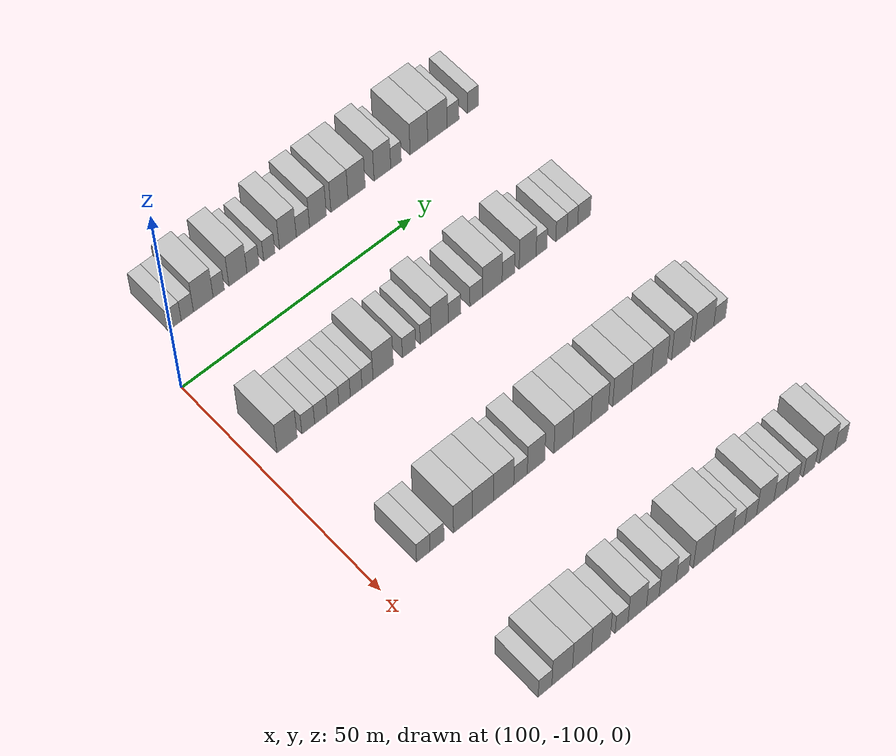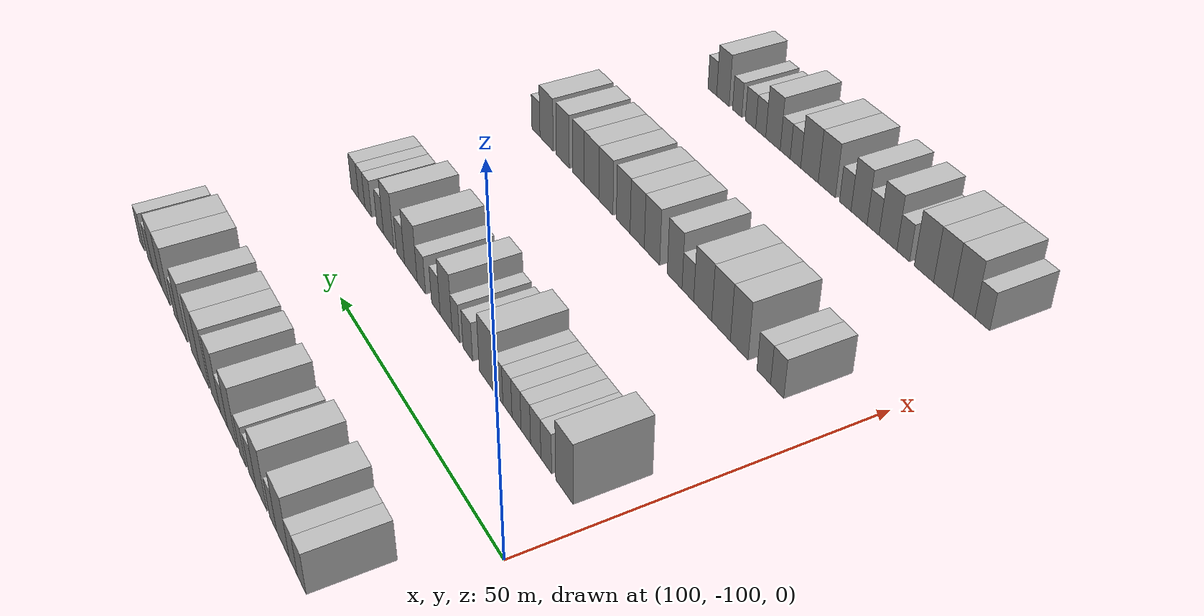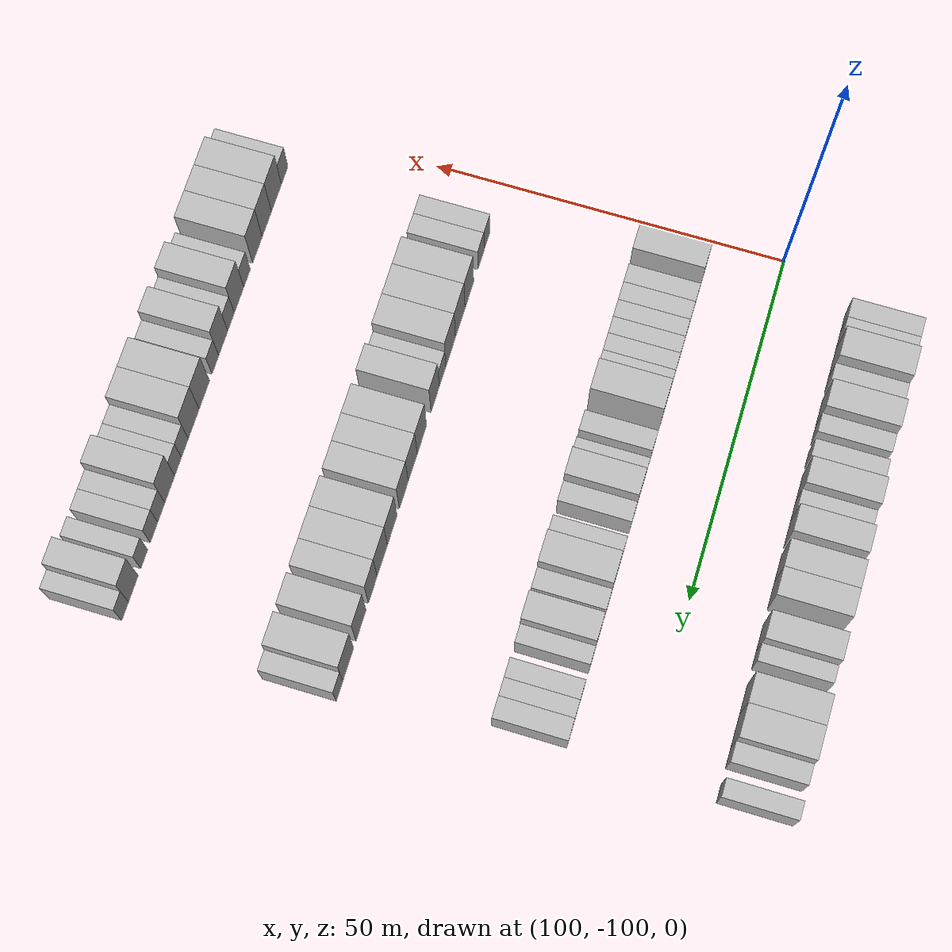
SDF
<sdf version="1.6">
 <world name="default">
  <model name="building_545">
   <static>1</static>
   <pose>85.0000 -93.4274 0 0.000000 0.000000 0.000000</pose>
   <link name="link">
    <pose>0 0 3.00 0 0 0</pose>
    <collision name="collision"><geometry><box><size>10.0000 2.8045 6.0000</size></box></geometry></collision>
    <visual name="visual">
     <cast_shadows>0</cast_shadows>
     <geometry><box><size>10.0000 2.8045 6.0000</size></box></geometry>
     <material>
      <script>
       <uri>model://HANNAS_wall/materials/scripts</uri>
       <uri>model://HANNAS_wall/materials/textures</uri>
       <name>vrc/HANNAS_wall</name>
      </script>
     </material>
    </visual>
   </link>
  </model>
  <model name="building_546">
   <static>1</static>
   <pose>85.0000 -90.7213 0 0.000000 0.000000 0.000000</pose>
   <link name="link">
    <pose>0 0 3.00 0 0 0</pose>
    <collision name="collision"><geometry><box><size>10.0000 2.6078 6.0000</size></box></geometry></collision>
    <visual name="visual">
     <cast_shadows>0</cast_shadows>
     <geometry><box><size>10.0000 2.6078 6.0000</size></box></geometry>
     <material>
      <script>
       <uri>model://HANNAS_wall/materials/scripts</uri>
       <uri>model://HANNAS_wall/materials/textures</uri>
       <name>vrc/HANNAS_wall</name>
      </script>
     </material>
    </visual>
   </link>
  </model>
  <model name="building_547">
   <static>1</static>
   <pose>85.0000 -87.3017 0 0.000000 0.000000 0.000000</pose>
   <link name="link">
    <pose>0 0 4.50 0 0 0</pose>
    <collision name="collision"><geometry><box><size>10.0000 4.2316 9.0000</size></box></geometry></collision>
    <visual name="visual">
     <cast_shadows>0</cast_shadows>
     <geometry><box><size>10.0000 4.2316 9.0000</size></box></geometry>
     <material>
      <script>
       <uri>model://HANNAS_wall/materials/scripts</uri>
       <uri>model://HANNAS_wall/materials/textures</uri>
       <name>vrc/HANNAS_wall</name>
      </script>
     </material>
    </visual>
   </link>
  </model>
  <model name="building_548">
   <static>1</static>
   <pose>85.0000 -83.9809 0 0.000000 0.000000 0.000000</pose>
   <link name="link">
    <pose>0 0 3.00 0 0 0</pose>
    <collision name="collision"><geometry><box><size>10.0000 2.4099 6.0000</size></box></geometry></collision>
    <visual name="visual">
     <cast_shadows>0</cast_shadows>
     <geometry><box><size>10.0000 2.4099 6.0000</size></box></geometry>
     <material>
      <script>
       <uri>model://HANNAS_wall/materials/scripts</uri>
       <uri>model://HANNAS_wall/materials/textures</uri>
       <name>vrc/HANNAS_wall</name>
      </script>
     </material>
    </visual>
   </link>
  </model>
  <model name="building_549">
   <static>1</static>
   <pose>85.0000 -79.8259 0 0.000000 0.000000 0.000000</pose>
   <link name="link">
    <pose>0 0 4.50 0 0 0</pose>
    <collision name="collision"><geometry><box><size>10.0000 3.9003 9.0000</size></box></geometry></collision>
    <visual name="visual">
     <cast_shadows>0</cast_shadows>
     <geometry><box><size>10.0000 3.9003 9.0000</size></box></geometry>
     <material>
      <script>
       <uri>model://HANNAS_wall/materials/scripts</uri>
       <uri>model://HANNAS_wall/materials/textures</uri>
       <name>vrc/HANNAS_wall</name>
      </script>
     </material>
    </visual>
   </link>
  </model>
  <model name="building_550">
   <static>1</static>
   <pose>85.0000 -76.5499 0 0.000000 0.000000 0.000000</pose>
   <link name="link">
    <pose>0 0 3.00 0 0 0</pose>
    <collision name="collision"><geometry><box><size>10.0000 2.6516 6.0000</size></box></geometry></collision>
    <visual name="visual">
     <cast_shadows>0</cast_shadows>
     <geometry><box><size>10.0000 2.6516 6.0000</size></box></geometry>
     <material>
      <script>
       <uri>model://HANNAS_wall/materials/scripts</uri>
       <uri>model://HANNAS_wall/materials/textures</uri>
       <name>vrc/HANNAS_wall</name>
      </script>
     </material>
    </visual>
   </link>
  </model>
  <model name="building_551">
   <static>1</static>
   <pose>85.0000 -72.9859 0 0.000000 0.000000 0.000000</pose>
   <link name="link">
    <pose>0 0 3.00 0 0 0</pose>
    <collision name="collision"><geometry><box><size>10.0000 2.4764 6.0000</size></box></geometry></collision>
    <visual name="visual">
     <cast_shadows>0</cast_shadows>
     <geometry><box><size>10.0000 2.4764 6.0000</size></box></geometry>
     <material>
      <script>
       <uri>model://HANNAS_wall/materials/scripts</uri>
       <uri>model://HANNAS_wall/materials/textures</uri>
       <name>vrc/HANNAS_wall</name>
      </script>
     </material>
    </visual>
   </link>
  </model>
  <model name="building_552">
   <static>1</static>
   <pose>85.0000 -68.8958 0 0.000000 0.000000 0.000000</pose>
   <link name="link">
    <pose>0 0 4.50 0 0 0</pose>
    <collision name="collision"><geometry><box><size>10.0000 3.7038 9.0000</size></box></geometry></collision>
    <visual name="visual">
     <cast_shadows>0</cast_shadows>
     <geometry><box><size>10.0000 3.7038 9.0000</size></box></geometry>
     <material>
      <script>
       <uri>model://HANNAS_wall/materials/scripts</uri>
       <uri>model://HANNAS_wall/materials/textures</uri>
       <name>vrc/HANNAS_wall</name>
      </script>
     </material>
    </visual>
   </link>
  </model>
  <model name="building_553">
   <static>1</static>
   <pose>85.0000 -65.5729 0 0.000000 0.000000 0.000000</pose>
   <link name="link">
    <pose>0 0 3.00 0 0 0</pose>
    <collision name="collision"><geometry><box><size>10.0000 2.9420 6.0000</size></box></geometry></collision>
    <visual name="visual">
     <cast_shadows>0</cast_shadows>
     <geometry><box><size>10.0000 2.9420 6.0000</size></box></geometry>
     <material>
      <script>
       <uri>model://HANNAS_wall/materials/scripts</uri>
       <uri>model://HANNAS_wall/materials/textures</uri>
       <name>vrc/HANNAS_wall</name>
      </script>
     </material>
    </visual>
   </link>
  </model>
  <model name="building_554">
   <static>1</static>
   <pose>85.0000 -62.2259 0 0.000000 0.000000 0.000000</pose>
   <link name="link">
    <pose>0 0 4.50 0 0 0</pose>
    <collision name="collision"><geometry><box><size>10.0000 3.7520 9.0000</size></box></geometry></collision>
    <visual name="visual">
     <cast_shadows>0</cast_shadows>
     <geometry><box><size>10.0000 3.7520 9.0000</size></box></geometry>
     <material>
      <script>
       <uri>model://HANNAS_wall/materials/scripts</uri>
       <uri>model://HANNAS_wall/materials/textures</uri>
       <name>vrc/HANNAS_wall</name>
      </script>
     </material>
    </visual>
   </link>
  </model>
  <model name="building_555">
   <static>1</static>
   <pose>85.0000 -57.4325 0 0.000000 0.000000 0.000000</pose>
   <link name="link">
    <pose>0 0 4.50 0 0 0</pose>
    <collision name="collision"><geometry><box><size>10.0000 3.8347 9.0000</size></box></geometry></collision>
    <visual name="visual">
     <cast_shadows>0</cast_shadows>
     <geometry><box><size>10.0000 3.8347 9.0000</size></box></geometry>
     <material>
      <script>
       <uri>model://HANNAS_wall/materials/scripts</uri>
       <uri>model://HANNAS_wall/materials/textures</uri>
       <name>vrc/HANNAS_wall</name>
      </script>
     </material>
    </visual>
   </link>
  </model>
  <model name="building_556">
   <static>1</static>
   <pose>85.0000 -53.5771 0 0.000000 0.000000 0.000000</pose>
   <link name="link">
    <pose>0 0 4.50 0 0 0</pose>
    <collision name="collision"><geometry><box><size>10.0000 3.8761 9.0000</size></box></geometry></collision>
    <visual name="visual">
     <cast_shadows>0</cast_shadows>
     <geometry><box><size>10.0000 3.8761 9.0000</size></box></geometry>
     <material>
      <script>
       <uri>model://HANNAS_wall/materials/scripts</uri>
       <uri>model://HANNAS_wall/materials/textures</uri>
       <name>vrc/HANNAS_wall</name>
      </script>
     </material>
    </visual>
   </link>
  </model>
  <model name="building_557">
   <static>1</static>
   <pose>85.0000 -47.7455 0 0.000000 0.000000 0.000000</pose>
   <link name="link">
    <pose>0 0 4.50 0 0 0</pose>
    <collision name="collision"><geometry><box><size>10.0000 3.7870 9.0000</size></box></geometry></collision>
    <visual name="visual">
     <cast_shadows>0</cast_shadows>
     <geometry><box><size>10.0000 3.7870 9.0000</size></box></geometry>
     <material>
      <script>
       <uri>model://HANNAS_wall/materials/scripts</uri>
       <uri>model://HANNAS_wall/materials/textures</uri>
       <name>vrc/HANNAS_wall</name>
      </script>
     </material>
    </visual>
   </link>
  </model>
  <model name="building_558">
   <static>1</static>
   <pose>85.0000 -44.6456 0 0.000000 0.000000 0.000000</pose>
   <link name="link">
    <pose>0 0 3.00 0 0 0</pose>
    <collision name="collision"><geometry><box><size>10.0000 2.4130 6.0000</size></box></geometry></collision>
    <visual name="visual">
     <cast_shadows>0</cast_shadows>
     <geometry><box><size>10.0000 2.4130 6.0000</size></box></geometry>
     <material>
      <script>
       <uri>model://HANNAS_wall/materials/scripts</uri>
       <uri>model://HANNAS_wall/materials/textures</uri>
       <name>vrc/HANNAS_wall</name>
      </script>
     </material>
    </visual>
   </link>
  </model>
  <model name="building_559">
   <static>1</static>
   <pose>85.0000 -39.4135 0 0.000000 0.000000 0.000000</pose>
   <link name="link">
    <pose>0 0 4.50 0 0 0</pose>
    <collision name="collision"><geometry><box><size>10.0000 4.0512 9.0000</size></box></geometry></collision>
    <visual name="visual">
     <cast_shadows>0</cast_shadows>
     <geometry><box><size>10.0000 4.0512 9.0000</size></box></geometry>
     <material>
      <script>
       <uri>model://HANNAS_wall/materials/scripts</uri>
       <uri>model://HANNAS_wall/materials/textures</uri>
       <name>vrc/HANNAS_wall</name>
      </script>
     </material>
    </visual>
   </link>
  </model>
  <model name="building_560">
   <static>1</static>
   <pose>85.0000 -35.1451 0 0.000000 0.000000 0.000000</pose>
   <link name="link">
    <pose>0 0 4.50 0 0 0</pose>
    <collision name="collision"><geometry><box><size>10.0000 4.4854 9.0000</size></box></geometry></collision>
    <visual name="visual">
     <cast_shadows>0</cast_shadows>
     <geometry><box><size>10.0000 4.4854 9.0000</size></box></geometry>
     <material>
      <script>
       <uri>model://HANNAS_wall/materials/scripts</uri>
       <uri>model://HANNAS_wall/materials/textures</uri>
       <name>vrc/HANNAS_wall</name>
      </script>
     </material>
    </visual>
   </link>
  </model>
  <model name="building_561">
   <static>1</static>
   <pose>85.0000 -31.5239 0 0.000000 0.000000 0.000000</pose>
   <link name="link">
    <pose>0 0 3.00 0 0 0</pose>
    <collision name="collision"><geometry><box><size>10.0000 2.7570 6.0000</size></box></geometry></collision>
    <visual name="visual">
     <cast_shadows>0</cast_shadows>
     <geometry><box><size>10.0000 2.7570 6.0000</size></box></geometry>
     <material>
      <script>
       <uri>model://HANNAS_wall/materials/scripts</uri>
       <uri>model://HANNAS_wall/materials/textures</uri>
       <name>vrc/HANNAS_wall</name>
      </script>
     </material>
    </visual>
   </link>
  </model>
  <model name="building_562">
   <static>1</static>
   <pose>85.0000 -26.8855 0 0.000000 0.000000 0.000000</pose>
   <link name="link">
    <pose>0 0 3.00 0 0 0</pose>
    <collision name="collision"><geometry><box><size>10.0000 2.5198 6.0000</size></box></geometry></collision>
    <visual name="visual">
     <cast_shadows>0</cast_shadows>
     <geometry><box><size>10.0000 2.5198 6.0000</size></box></geometry>
     <material>
      <script>
       <uri>model://HANNAS_wall/materials/scripts</uri>
       <uri>model://HANNAS_wall/materials/textures</uri>
       <name>vrc/HANNAS_wall</name>
      </script>
     </material>
    </visual>
   </link>
  </model>
  <model name="building_763">
   <static>1</static>
   <pose>115.0000 -94.1213 0 0.000000 0.000000 0.000000</pose>
   <link name="link">
    <pose>0 0 4.50 0 0 0</pose>
    <collision name="collision"><geometry><box><size>10.0000 4.2660 9.0000</size></box></geometry></collision>
    <visual name="visual">
     <cast_shadows>0</cast_shadows>
     <geometry><box><size>10.0000 4.2660 9.0000</size></box></geometry>
     <material>
      <script>
       <uri>model://HANNAS_wall/materials/scripts</uri>
       <uri>model://HANNAS_wall/materials/textures</uri>
       <name>vrc/HANNAS_wall</name>
      </script>
     </material>
    </visual>
   </link>
  </model>
  <model name="building_764">
   <static>1</static>
   <pose>115.0000 -89.6271 0 0.000000 0.000000 0.000000</pose>
   <link name="link">
    <pose>0 0 3.00 0 0 0</pose>
    <collision name="collision"><geometry><box><size>10.0000 2.7225 6.0000</size></box></geometry></collision>
    <visual name="visual">
     <cast_shadows>0</cast_shadows>
     <geometry><box><size>10.0000 2.7225 6.0000</size></box></geometry>
     <material>
      <script>
       <uri>model://HANNAS_wall/materials/scripts</uri>
       <uri>model://HANNAS_wall/materials/textures</uri>
       <name>vrc/HANNAS_wall</name>
      </script>
     </material>
    </visual>
   </link>
  </model>
  <model name="building_765">
   <static>1</static>
   <pose>115.0000 -86.9299 0 0.000000 0.000000 0.000000</pose>
   <link name="link">
    <pose>0 0 3.00 0 0 0</pose>
    <collision name="collision"><geometry><box><size>10.0000 2.6718 6.0000</size></box></geometry></collision>
    <visual name="visual">
     <cast_shadows>0</cast_shadows>
     <geometry><box><size>10.0000 2.6718 6.0000</size></box></geometry>
     <material>
      <script>
       <uri>model://HANNAS_wall/materials/scripts</uri>
       <uri>model://HANNAS_wall/materials/textures</uri>
       <name>vrc/HANNAS_wall</name>
      </script>
     </material>
    </visual>
   </link>
  </model>
  <model name="building_766">
   <static>1</static>
   <pose>115.0000 -84.3327 0 0.000000 0.000000 0.000000</pose>
   <link name="link">
    <pose>0 0 3.00 0 0 0</pose>
    <collision name="collision"><geometry><box><size>10.0000 2.5227 6.0000</size></box></geometry></collision>
    <visual name="visual">
     <cast_shadows>0</cast_shadows>
     <geometry><box><size>10.0000 2.5227 6.0000</size></box></geometry>
     <material>
      <script>
       <uri>model://HANNAS_wall/materials/scripts</uri>
       <uri>model://HANNAS_wall/materials/textures</uri>
       <name>vrc/HANNAS_wall</name>
      </script>
     </material>
    </visual>
   </link>
  </model>
  <model name="building_767">
   <static>1</static>
   <pose>115.0000 -81.8428 0 0.000000 0.000000 0.000000</pose>
   <link name="link">
    <pose>0 0 3.00 0 0 0</pose>
    <collision name="collision"><geometry><box><size>10.0000 2.4573 6.0000</size></box></geometry></collision>
    <visual name="visual">
     <cast_shadows>0</cast_shadows>
     <geometry><box><size>10.0000 2.4573 6.0000</size></box></geometry>
     <material>
      <script>
       <uri>model://HANNAS_wall/materials/scripts</uri>
       <uri>model://HANNAS_wall/materials/textures</uri>
       <name>vrc/HANNAS_wall</name>
      </script>
     </material>
    </visual>
   </link>
  </model>
  <model name="building_768">
   <static>1</static>
   <pose>115.0000 -79.3623 0 0.000000 0.000000 0.000000</pose>
   <link name="link">
    <pose>0 0 3.00 0 0 0</pose>
    <collision name="collision"><geometry><box><size>10.0000 2.5037 6.0000</size></box></geometry></collision>
    <visual name="visual">
     <cast_shadows>0</cast_shadows>
     <geometry><box><size>10.0000 2.5037 6.0000</size></box></geometry>
     <material>
      <script>
       <uri>model://HANNAS_wall/materials/scripts</uri>
       <uri>model://HANNAS_wall/materials/textures</uri>
       <name>vrc/HANNAS_wall</name>
      </script>
     </material>
    </visual>
   </link>
  </model>
  <model name="building_769">
   <static>1</static>
   <pose>115.0000 -76.9100 0 0.000000 0.000000 0.000000</pose>
   <link name="link">
    <pose>0 0 3.00 0 0 0</pose>
    <collision name="collision"><geometry><box><size>10.0000 2.4008 6.0000</size></box></geometry></collision>
    <visual name="visual">
     <cast_shadows>0</cast_shadows>
     <geometry><box><size>10.0000 2.4008 6.0000</size></box></geometry>
     <material>
      <script>
       <uri>model://HANNAS_wall/materials/scripts</uri>
       <uri>model://HANNAS_wall/materials/textures</uri>
       <name>vrc/HANNAS_wall</name>
      </script>
     </material>
    </visual>
   </link>
  </model>
  <model name="building_770">
   <static>1</static>
   <pose>115.0000 -73.5172 0 0.000000 0.000000 0.000000</pose>
   <link name="link">
    <pose>0 0 4.50 0 0 0</pose>
    <collision name="collision"><geometry><box><size>10.0000 4.3848 9.0000</size></box></geometry></collision>
    <visual name="visual">
     <cast_shadows>0</cast_shadows>
     <geometry><box><size>10.0000 4.3848 9.0000</size></box></geometry>
     <material>
      <script>
       <uri>model://HANNAS_wall/materials/scripts</uri>
       <uri>model://HANNAS_wall/materials/textures</uri>
       <name>vrc/HANNAS_wall</name>
      </script>
     </material>
    </visual>
   </link>
  </model>
  <model name="building_771">
   <static>1</static>
   <pose>115.0000 -67.8731 0 0.000000 0.000000 0.000000</pose>
   <link name="link">
    <pose>0 0 3.00 0 0 0</pose>
    <collision name="collision"><geometry><box><size>10.0000 2.9035 6.0000</size></box></geometry></collision>
    <visual name="visual">
     <cast_shadows>0</cast_shadows>
     <geometry><box><size>10.0000 2.9035 6.0000</size></box></geometry>
     <material>
      <script>
       <uri>model://HANNAS_wall/materials/scripts</uri>
       <uri>model://HANNAS_wall/materials/textures</uri>
       <name>vrc/HANNAS_wall</name>
      </script>
     </material>
    </visual>
   </link>
  </model>
  <model name="building_772">
   <static>1</static>
   <pose>115.0000 -64.2178 0 0.000000 0.000000 0.000000</pose>
   <link name="link">
    <pose>0 0 3.00 0 0 0</pose>
    <collision name="collision"><geometry><box><size>10.0000 2.4072 6.0000</size></box></geometry></collision>
    <visual name="visual">
     <cast_shadows>0</cast_shadows>
     <geometry><box><size>10.0000 2.4072 6.0000</size></box></geometry>
     <material>
      <script>
       <uri>model://HANNAS_wall/materials/scripts</uri>
       <uri>model://HANNAS_wall/materials/textures</uri>
       <name>vrc/HANNAS_wall</name>
      </script>
     </material>
    </visual>
   </link>
  </model>
  <model name="building_773">
   <static>1</static>
   <pose>115.0000 -61.1125 0 0.000000 0.000000 0.000000</pose>
   <link name="link">
    <pose>0 0 4.50 0 0 0</pose>
    <collision name="collision"><geometry><box><size>10.0000 3.8033 9.0000</size></box></geometry></collision>
    <visual name="visual">
     <cast_shadows>0</cast_shadows>
     <geometry><box><size>10.0000 3.8033 9.0000</size></box></geometry>
     <material>
      <script>
       <uri>model://HANNAS_wall/materials/scripts</uri>
       <uri>model://HANNAS_wall/materials/textures</uri>
       <name>vrc/HANNAS_wall</name>
      </script>
     </material>
    </visual>
   </link>
  </model>
  <model name="building_774">
   <static>1</static>
   <pose>115.0000 -57.7980 0 0.000000 0.000000 0.000000</pose>
   <link name="link">
    <pose>0 0 3.00 0 0 0</pose>
    <collision name="collision"><geometry><box><size>10.0000 2.8256 6.0000</size></box></geometry></collision>
    <visual name="visual">
     <cast_shadows>0</cast_shadows>
     <geometry><box><size>10.0000 2.8256 6.0000</size></box></geometry>
     <material>
      <script>
       <uri>model://HANNAS_wall/materials/scripts</uri>
       <uri>model://HANNAS_wall/materials/textures</uri>
       <name>vrc/HANNAS_wall</name>
      </script>
     </material>
    </visual>
   </link>
  </model>
  <model name="building_775">
   <static>1</static>
   <pose>115.0000 -52.9632 0 0.000000 0.000000 0.000000</pose>
   <link name="link">
    <pose>0 0 3.00 0 0 0</pose>
    <collision name="collision"><geometry><box><size>10.0000 2.8440 6.0000</size></box></geometry></collision>
    <visual name="visual">
     <cast_shadows>0</cast_shadows>
     <geometry><box><size>10.0000 2.8440 6.0000</size></box></geometry>
     <material>
      <script>
       <uri>model://HANNAS_wall/materials/scripts</uri>
       <uri>model://HANNAS_wall/materials/textures</uri>
       <name>vrc/HANNAS_wall</name>
      </script>
     </material>
    </visual>
   </link>
  </model>
  <model name="building_776">
   <static>1</static>
   <pose>115.0000 -49.3430 0 0.000000 0.000000 0.000000</pose>
   <link name="link">
    <pose>0 0 4.50 0 0 0</pose>
    <collision name="collision"><geometry><box><size>10.0000 4.3964 9.0000</size></box></geometry></collision>
    <visual name="visual">
     <cast_shadows>0</cast_shadows>
     <geometry><box><size>10.0000 4.3964 9.0000</size></box></geometry>
     <material>
      <script>
       <uri>model://HANNAS_wall/materials/scripts</uri>
       <uri>model://HANNAS_wall/materials/textures</uri>
       <name>vrc/HANNAS_wall</name>
      </script>
     </material>
    </visual>
   </link>
  </model>
  <model name="building_777">
   <static>1</static>
   <pose>115.0000 -45.7103 0 0.000000 0.000000 0.000000</pose>
   <link name="link">
    <pose>0 0 3.00 0 0 0</pose>
    <collision name="collision"><geometry><box><size>10.0000 2.8691 6.0000</size></box></geometry></collision>
    <visual name="visual">
     <cast_shadows>0</cast_shadows>
     <geometry><box><size>10.0000 2.8691 6.0000</size></box></geometry>
     <material>
      <script>
       <uri>model://HANNAS_wall/materials/scripts</uri>
       <uri>model://HANNAS_wall/materials/textures</uri>
       <name>vrc/HANNAS_wall</name>
      </script>
     </material>
    </visual>
   </link>
  </model>
  <model name="building_778">
   <static>1</static>
   <pose>115.0000 -41.3480 0 0.000000 0.000000 0.000000</pose>
   <link name="link">
    <pose>0 0 4.50 0 0 0</pose>
    <collision name="collision"><geometry><box><size>10.0000 3.8555 9.0000</size></box></geometry></collision>
    <visual name="visual">
     <cast_shadows>0</cast_shadows>
     <geometry><box><size>10.0000 3.8555 9.0000</size></box></geometry>
     <material>
      <script>
       <uri>model://HANNAS_wall/materials/scripts</uri>
       <uri>model://HANNAS_wall/materials/textures</uri>
       <name>vrc/HANNAS_wall</name>
      </script>
     </material>
    </visual>
   </link>
  </model>
  <model name="building_779">
   <static>1</static>
   <pose>115.0000 -38.1606 0 0.000000 0.000000 0.000000</pose>
   <link name="link">
    <pose>0 0 3.00 0 0 0</pose>
    <collision name="collision"><geometry><box><size>10.0000 2.5193 6.0000</size></box></geometry></collision>
    <visual name="visual">
     <cast_shadows>0</cast_shadows>
     <geometry><box><size>10.0000 2.5193 6.0000</size></box></geometry>
     <material>
      <script>
       <uri>model://HANNAS_wall/materials/scripts</uri>
       <uri>model://HANNAS_wall/materials/textures</uri>
       <name>vrc/HANNAS_wall</name>
      </script>
     </material>
    </visual>
   </link>
  </model>
  <model name="building_780">
   <static>1</static>
   <pose>115.0000 -33.5853 0 0.000000 0.000000 0.000000</pose>
   <link name="link">
    <pose>0 0 3.00 0 0 0</pose>
    <collision name="collision"><geometry><box><size>10.0000 2.6312 6.0000</size></box></geometry></collision>
    <visual name="visual">
     <cast_shadows>0</cast_shadows>
     <geometry><box><size>10.0000 2.6312 6.0000</size></box></geometry>
     <material>
      <script>
       <uri>model://HANNAS_wall/materials/scripts</uri>
       <uri>model://HANNAS_wall/materials/textures</uri>
       <name>vrc/HANNAS_wall</name>
      </script>
     </material>
    </visual>
   </link>
  </model>
  <model name="building_781">
   <static>1</static>
   <pose>115.0000 -31.0492 0 0.000000 0.000000 0.000000</pose>
   <link name="link">
    <pose>0 0 3.00 0 0 0</pose>
    <collision name="collision"><geometry><box><size>10.0000 2.4410 6.0000</size></box></geometry></collision>
    <visual name="visual">
     <cast_shadows>0</cast_shadows>
     <geometry><box><size>10.0000 2.4410 6.0000</size></box></geometry>
     <material>
      <script>
       <uri>model://HANNAS_wall/materials/scripts</uri>
       <uri>model://HANNAS_wall/materials/textures</uri>
       <name>vrc/HANNAS_wall</name>
      </script>
     </material>
    </visual>
   </link>
  </model>
  <model name="building_782">
   <static>1</static>
   <pose>115.0000 -28.3420 0 0.000000 0.000000 0.000000</pose>
   <link name="link">
    <pose>0 0 3.00 0 0 0</pose>
    <collision name="collision"><geometry><box><size>10.0000 2.9734 6.0000</size></box></geometry></collision>
    <visual name="visual">
     <cast_shadows>0</cast_shadows>
     <geometry><box><size>10.0000 2.9734 6.0000</size></box></geometry>
     <material>
      <script>
       <uri>model://HANNAS_wall/materials/scripts</uri>
       <uri>model://HANNAS_wall/materials/textures</uri>
       <name>vrc/HANNAS_wall</name>
      </script>
     </material>
    </visual>
   </link>
  </model>
  <model name="building_1007">
   <static>1</static>
   <pose>145.0000 -91.0903 0 0.000000 0.000000 0.000000</pose>
   <link name="link">
    <pose>0 0 3.00 0 0 0</pose>
    <collision name="collision"><geometry><box><size>10.0000 2.8509 6.0000</size></box></geometry></collision>
    <visual name="visual">
     <cast_shadows>0</cast_shadows>
     <geometry><box><size>10.0000 2.8509 6.0000</size></box></geometry>
     <material>
      <script>
       <uri>model://HANNAS_wall/materials/scripts</uri>
       <uri>model://HANNAS_wall/materials/textures</uri>
       <name>vrc/HANNAS_wall</name>
      </script>
     </material>
    </visual>
   </link>
  </model>
  <model name="building_1008">
   <static>1</static>
   <pose>145.0000 -88.1753 0 0.000000 0.000000 0.000000</pose>
   <link name="link">
    <pose>0 0 3.00 0 0 0</pose>
    <collision name="collision"><geometry><box><size>10.0000 2.9791 6.0000</size></box></geometry></collision>
    <visual name="visual">
     <cast_shadows>0</cast_shadows>
     <geometry><box><size>10.0000 2.9791 6.0000</size></box></geometry>
     <material>
      <script>
       <uri>model://HANNAS_wall/materials/scripts</uri>
       <uri>model://HANNAS_wall/materials/textures</uri>
       <name>vrc/HANNAS_wall</name>
      </script>
     </material>
    </visual>
   </link>
  </model>
  <model name="building_1009">
   <static>1</static>
   <pose>145.0000 -82.6483 0 0.000000 0.000000 0.000000</pose>
   <link name="link">
    <pose>0 0 4.50 0 0 0</pose>
    <collision name="collision"><geometry><box><size>10.0000 4.0748 9.0000</size></box></geometry></collision>
    <visual name="visual">
     <cast_shadows>0</cast_shadows>
     <geometry><box><size>10.0000 4.0748 9.0000</size></box></geometry>
     <material>
      <script>
       <uri>model://HANNAS_wall/materials/scripts</uri>
       <uri>model://HANNAS_wall/materials/textures</uri>
       <name>vrc/HANNAS_wall</name>
      </script>
     </material>
    </visual>
   </link>
  </model>
  <model name="building_1010">
   <static>1</static>
   <pose>145.0000 -78.3878 0 0.000000 0.000000 0.000000</pose>
   <link name="link">
    <pose>0 0 4.50 0 0 0</pose>
    <collision name="collision"><geometry><box><size>10.0000 4.4463 9.0000</size></box></geometry></collision>
    <visual name="visual">
     <cast_shadows>0</cast_shadows>
     <geometry><box><size>10.0000 4.4463 9.0000</size></box></geometry>
     <material>
      <script>
       <uri>model://HANNAS_wall/materials/scripts</uri>
       <uri>model://HANNAS_wall/materials/textures</uri>
       <name>vrc/HANNAS_wall</name>
      </script>
     </material>
    </visual>
   </link>
  </model>
  <model name="building_1011">
   <static>1</static>
   <pose>145.0000 -73.9531 0 0.000000 0.000000 0.000000</pose>
   <link name="link">
    <pose>0 0 4.50 0 0 0</pose>
    <collision name="collision"><geometry><box><size>10.0000 4.4231 9.0000</size></box></geometry></collision>
    <visual name="visual">
     <cast_shadows>0</cast_shadows>
     <geometry><box><size>10.0000 4.4231 9.0000</size></box></geometry>
     <material>
      <script>
       <uri>model://HANNAS_wall/materials/scripts</uri>
       <uri>model://HANNAS_wall/materials/textures</uri>
       <name>vrc/HANNAS_wall</name>
      </script>
     </material>
    </visual>
   </link>
  </model>
  <model name="building_1012">
   <static>1</static>
   <pose>145.0000 -70.2704 0 0.000000 0.000000 0.000000</pose>
   <link name="link">
    <pose>0 0 3.00 0 0 0</pose>
    <collision name="collision"><geometry><box><size>10.0000 2.9422 6.0000</size></box></geometry></collision>
    <visual name="visual">
     <cast_shadows>0</cast_shadows>
     <geometry><box><size>10.0000 2.9422 6.0000</size></box></geometry>
     <material>
      <script>
       <uri>model://HANNAS_wall/materials/scripts</uri>
       <uri>model://HANNAS_wall/materials/textures</uri>
       <name>vrc/HANNAS_wall</name>
      </script>
     </material>
    </visual>
   </link>
  </model>
  <model name="building_1013">
   <static>1</static>
   <pose>145.0000 -66.8924 0 0.000000 0.000000 0.000000</pose>
   <link name="link">
    <pose>0 0 4.50 0 0 0</pose>
    <collision name="collision"><geometry><box><size>10.0000 3.8138 9.0000</size></box></geometry></collision>
    <visual name="visual">
     <cast_shadows>0</cast_shadows>
     <geometry><box><size>10.0000 3.8138 9.0000</size></box></geometry>
     <material>
      <script>
       <uri>model://HANNAS_wall/materials/scripts</uri>
       <uri>model://HANNAS_wall/materials/textures</uri>
       <name>vrc/HANNAS_wall</name>
      </script>
     </material>
    </visual>
   </link>
  </model>
  <model name="building_1014">
   <static>1</static>
   <pose>145.0000 -60.9011 0 0.000000 0.000000 0.000000</pose>
   <link name="link">
    <pose>0 0 4.50 0 0 0</pose>
    <collision name="collision"><geometry><box><size>10.0000 4.1688 9.0000</size></box></geometry></collision>
    <visual name="visual">
     <cast_shadows>0</cast_shadows>
     <geometry><box><size>10.0000 4.1688 9.0000</size></box></geometry>
     <material>
      <script>
       <uri>model://HANNAS_wall/materials/scripts</uri>
       <uri>model://HANNAS_wall/materials/textures</uri>
       <name>vrc/HANNAS_wall</name>
      </script>
     </material>
    </visual>
   </link>
  </model>
  <model name="building_1015">
   <static>1</static>
   <pose>145.0000 -56.8330 0 0.000000 0.000000 0.000000</pose>
   <link name="link">
    <pose>0 0 4.50 0 0 0</pose>
    <collision name="collision"><geometry><box><size>10.0000 3.9673 9.0000</size></box></geometry></collision>
    <visual name="visual">
     <cast_shadows>0</cast_shadows>
     <geometry><box><size>10.0000 3.9673 9.0000</size></box></geometry>
     <material>
      <script>
       <uri>model://HANNAS_wall/materials/scripts</uri>
       <uri>model://HANNAS_wall/materials/textures</uri>
       <name>vrc/HANNAS_wall</name>
      </script>
     </material>
    </visual>
   </link>
  </model>
  <model name="building_1016">
   <static>1</static>
   <pose>145.0000 -52.8866 0 0.000000 0.000000 0.000000</pose>
   <link name="link">
    <pose>0 0 4.50 0 0 0</pose>
    <collision name="collision"><geometry><box><size>10.0000 3.9256 9.0000</size></box></geometry></collision>
    <visual name="visual">
     <cast_shadows>0</cast_shadows>
     <geometry><box><size>10.0000 3.9256 9.0000</size></box></geometry>
     <material>
      <script>
       <uri>model://HANNAS_wall/materials/scripts</uri>
       <uri>model://HANNAS_wall/materials/textures</uri>
       <name>vrc/HANNAS_wall</name>
      </script>
     </material>
    </visual>
   </link>
  </model>
  <model name="building_1017">
   <static>1</static>
   <pose>145.0000 -47.8189 0 0.000000 0.000000 0.000000</pose>
   <link name="link">
    <pose>0 0 4.50 0 0 0</pose>
    <collision name="collision"><geometry><box><size>10.0000 4.2098 9.0000</size></box></geometry></collision>
    <visual name="visual">
     <cast_shadows>0</cast_shadows>
     <geometry><box><size>10.0000 4.2098 9.0000</size></box></geometry>
     <material>
      <script>
       <uri>model://HANNAS_wall/materials/scripts</uri>
       <uri>model://HANNAS_wall/materials/textures</uri>
       <name>vrc/HANNAS_wall</name>
      </script>
     </material>
    </visual>
   </link>
  </model>
  <model name="building_1018">
   <static>1</static>
   <pose>145.0000 -43.4937 0 0.000000 0.000000 0.000000</pose>
   <link name="link">
    <pose>0 0 4.50 0 0 0</pose>
    <collision name="collision"><geometry><box><size>10.0000 4.4406 9.0000</size></box></geometry></collision>
    <visual name="visual">
     <cast_shadows>0</cast_shadows>
     <geometry><box><size>10.0000 4.4406 9.0000</size></box></geometry>
     <material>
      <script>
       <uri>model://HANNAS_wall/materials/scripts</uri>
       <uri>model://HANNAS_wall/materials/textures</uri>
       <name>vrc/HANNAS_wall</name>
      </script>
     </material>
    </visual>
   </link>
  </model>
  <model name="building_1019">
   <static>1</static>
   <pose>145.0000 -39.4247 0 0.000000 0.000000 0.000000</pose>
   <link name="link">
    <pose>0 0 4.50 0 0 0</pose>
    <collision name="collision"><geometry><box><size>10.0000 3.6973 9.0000</size></box></geometry></collision>
    <visual name="visual">
     <cast_shadows>0</cast_shadows>
     <geometry><box><size>10.0000 3.6973 9.0000</size></box></geometry>
     <material>
      <script>
       <uri>model://HANNAS_wall/materials/scripts</uri>
       <uri>model://HANNAS_wall/materials/textures</uri>
       <name>vrc/HANNAS_wall</name>
      </script>
     </material>
    </visual>
   </link>
  </model>
  <model name="building_1020">
   <static>1</static>
   <pose>145.0000 -34.4571 0 0.000000 0.000000 0.000000</pose>
   <link name="link">
    <pose>0 0 4.50 0 0 0</pose>
    <collision name="collision"><geometry><box><size>10.0000 4.2379 9.0000</size></box></geometry></collision>
    <visual name="visual">
     <cast_shadows>0</cast_shadows>
     <geometry><box><size>10.0000 4.2379 9.0000</size></box></geometry>
     <material>
      <script>
       <uri>model://HANNAS_wall/materials/scripts</uri>
       <uri>model://HANNAS_wall/materials/textures</uri>
       <name>vrc/HANNAS_wall</name>
      </script>
     </material>
    </visual>
   </link>
  </model>
  <model name="building_1021">
   <static>1</static>
   <pose>145.0000 -29.1008 0 0.000000 0.000000 0.000000</pose>
   <link name="link">
    <pose>0 0 4.50 0 0 0</pose>
    <collision name="collision"><geometry><box><size>10.0000 4.4748 9.0000</size></box></geometry></collision>
    <visual name="visual">
     <cast_shadows>0</cast_shadows>
     <geometry><box><size>10.0000 4.4748 9.0000</size></box></geometry>
     <material>
      <script>
       <uri>model://HANNAS_wall/materials/scripts</uri>
       <uri>model://HANNAS_wall/materials/textures</uri>
       <name>vrc/HANNAS_wall</name>
      </script>
     </material>
    </visual>
   </link>
  </model>
  <model name="building_1022">
   <static>1</static>
   <pose>145.0000 -25.4885 0 0.000000 0.000000 0.000000</pose>
   <link name="link">
    <pose>0 0 3.00 0 0 0</pose>
    <collision name="collision"><geometry><box><size>10.0000 2.7497 6.0000</size></box></geometry></collision>
    <visual name="visual">
     <cast_shadows>0</cast_shadows>
     <geometry><box><size>10.0000 2.7497 6.0000</size></box></geometry>
     <material>
      <script>
       <uri>model://HANNAS_wall/materials/scripts</uri>
       <uri>model://HANNAS_wall/materials/textures</uri>
       <name>vrc/HANNAS_wall</name>
      </script>
     </material>
    </visual>
   </link>
  </model>
  <model name="building_1233">
   <static>1</static>
   <pose>175.0000 -92.4642 0 0.000000 0.000000 0.000000</pose>
   <link name="link">
    <pose>0 0 3.00 0 0 0</pose>
    <collision name="collision"><geometry><box><size>10.0000 2.8630 6.0000</size></box></geometry></collision>
    <visual name="visual">
     <cast_shadows>0</cast_shadows>
     <geometry><box><size>10.0000 2.8630 6.0000</size></box></geometry>
     <material>
      <script>
       <uri>model://HANNAS_wall/materials/scripts</uri>
       <uri>model://HANNAS_wall/materials/textures</uri>
       <name>vrc/HANNAS_wall</name>
      </script>
     </material>
    </visual>
   </link>
  </model>
  <model name="building_1234">
   <static>1</static>
   <pose>175.0000 -88.8635 0 0.000000 0.000000 0.000000</pose>
   <link name="link">
    <pose>0 0 4.50 0 0 0</pose>
    <collision name="collision"><geometry><box><size>10.0000 4.3384 9.0000</size></box></geometry></collision>
    <visual name="visual">
     <cast_shadows>0</cast_shadows>
     <geometry><box><size>10.0000 4.3384 9.0000</size></box></geometry>
     <material>
      <script>
       <uri>model://HANNAS_wall/materials/scripts</uri>
       <uri>model://HANNAS_wall/materials/textures</uri>
       <name>vrc/HANNAS_wall</name>
      </script>
     </material>
    </visual>
   </link>
  </model>
  <model name="building_1235">
   <static>1</static>
   <pose>175.0000 -84.7095 0 0.000000 0.000000 0.000000</pose>
   <link name="link">
    <pose>0 0 4.50 0 0 0</pose>
    <collision name="collision"><geometry><box><size>10.0000 3.9696 9.0000</size></box></geometry></collision>
    <visual name="visual">
     <cast_shadows>0</cast_shadows>
     <geometry><box><size>10.0000 3.9696 9.0000</size></box></geometry>
     <material>
      <script>
       <uri>model://HANNAS_wall/materials/scripts</uri>
       <uri>model://HANNAS_wall/materials/textures</uri>
       <name>vrc/HANNAS_wall</name>
      </script>
     </material>
    </visual>
   </link>
  </model>
  <model name="building_1236">
   <static>1</static>
   <pose>175.0000 -80.6860 0 0.000000 0.000000 0.000000</pose>
   <link name="link">
    <pose>0 0 4.50 0 0 0</pose>
    <collision name="collision"><geometry><box><size>10.0000 4.0772 9.0000</size></box></geometry></collision>
    <visual name="visual">
     <cast_shadows>0</cast_shadows>
     <geometry><box><size>10.0000 4.0772 9.0000</size></box></geometry>
     <material>
      <script>
       <uri>model://HANNAS_wall/materials/scripts</uri>
       <uri>model://HANNAS_wall/materials/textures</uri>
       <name>vrc/HANNAS_wall</name>
      </script>
     </material>
    </visual>
   </link>
  </model>
  <model name="building_1237">
   <static>1</static>
   <pose>175.0000 -76.2670 0 0.000000 0.000000 0.000000</pose>
   <link name="link">
    <pose>0 0 3.00 0 0 0</pose>
    <collision name="collision"><geometry><box><size>10.0000 2.7609 6.0000</size></box></geometry></collision>
    <visual name="visual">
     <cast_shadows>0</cast_shadows>
     <geometry><box><size>10.0000 2.7609 6.0000</size></box></geometry>
     <material>
      <script>
       <uri>model://HANNAS_wall/materials/scripts</uri>
       <uri>model://HANNAS_wall/materials/textures</uri>
       <name>vrc/HANNAS_wall</name>
      </script>
     </material>
    </visual>
   </link>
  </model>
  <model name="building_1238">
   <static>1</static>
   <pose>175.0000 -72.8984 0 0.000000 0.000000 0.000000</pose>
   <link name="link">
    <pose>0 0 4.50 0 0 0</pose>
    <collision name="collision"><geometry><box><size>10.0000 3.9764 9.0000</size></box></geometry></collision>
    <visual name="visual">
     <cast_shadows>0</cast_shadows>
     <geometry><box><size>10.0000 3.9764 9.0000</size></box></geometry>
     <material>
      <script>
       <uri>model://HANNAS_wall/materials/scripts</uri>
       <uri>model://HANNAS_wall/materials/textures</uri>
       <name>vrc/HANNAS_wall</name>
      </script>
     </material>
    </visual>
   </link>
  </model>
  <model name="building_1239">
   <static>1</static>
   <pose>175.0000 -69.5433 0 0.000000 0.000000 0.000000</pose>
   <link name="link">
    <pose>0 0 3.00 0 0 0</pose>
    <collision name="collision"><geometry><box><size>10.0000 2.7338 6.0000</size></box></geometry></collision>
    <visual name="visual">
     <cast_shadows>0</cast_shadows>
     <geometry><box><size>10.0000 2.7338 6.0000</size></box></geometry>
     <material>
      <script>
       <uri>model://HANNAS_wall/materials/scripts</uri>
       <uri>model://HANNAS_wall/materials/textures</uri>
       <name>vrc/HANNAS_wall</name>
      </script>
     </material>
    </visual>
   </link>
  </model>
  <model name="building_1240">
   <static>1</static>
   <pose>175.0000 -66.2998 0 0.000000 0.000000 0.000000</pose>
   <link name="link">
    <pose>0 0 4.50 0 0 0</pose>
    <collision name="collision"><geometry><box><size>10.0000 3.7532 9.0000</size></box></geometry></collision>
    <visual name="visual">
     <cast_shadows>0</cast_shadows>
     <geometry><box><size>10.0000 3.7532 9.0000</size></box></geometry>
     <material>
      <script>
       <uri>model://HANNAS_wall/materials/scripts</uri>
       <uri>model://HANNAS_wall/materials/textures</uri>
       <name>vrc/HANNAS_wall</name>
      </script>
     </material>
    </visual>
   </link>
  </model>
  <model name="building_1241">
   <static>1</static>
   <pose>175.0000 -63.0513 0 0.000000 0.000000 0.000000</pose>
   <link name="link">
    <pose>0 0 3.00 0 0 0</pose>
    <collision name="collision"><geometry><box><size>10.0000 2.7438 6.0000</size></box></geometry></collision>
    <visual name="visual">
     <cast_shadows>0</cast_shadows>
     <geometry><box><size>10.0000 2.7438 6.0000</size></box></geometry>
     <material>
      <script>
       <uri>model://HANNAS_wall/materials/scripts</uri>
       <uri>model://HANNAS_wall/materials/textures</uri>
       <name>vrc/HANNAS_wall</name>
      </script>
     </material>
    </visual>
   </link>
  </model>
  <model name="building_1242">
   <static>1</static>
   <pose>175.0000 -58.5605 0 0.000000 0.000000 0.000000</pose>
   <link name="link">
    <pose>0 0 4.50 0 0 0</pose>
    <collision name="collision"><geometry><box><size>10.0000 4.2379 9.0000</size></box></geometry></collision>
    <visual name="visual">
     <cast_shadows>0</cast_shadows>
     <geometry><box><size>10.0000 4.2379 9.0000</size></box></geometry>
     <material>
      <script>
       <uri>model://HANNAS_wall/materials/scripts</uri>
       <uri>model://HANNAS_wall/materials/textures</uri>
       <name>vrc/HANNAS_wall</name>
      </script>
     </material>
    </visual>
   </link>
  </model>
  <model name="building_1243">
   <static>1</static>
   <pose>175.0000 -54.2265 0 0.000000 0.000000 0.000000</pose>
   <link name="link">
    <pose>0 0 4.50 0 0 0</pose>
    <collision name="collision"><geometry><box><size>10.0000 4.4302 9.0000</size></box></geometry></collision>
    <visual name="visual">
     <cast_shadows>0</cast_shadows>
     <geometry><box><size>10.0000 4.4302 9.0000</size></box></geometry>
     <material>
      <script>
       <uri>model://HANNAS_wall/materials/scripts</uri>
       <uri>model://HANNAS_wall/materials/textures</uri>
       <name>vrc/HANNAS_wall</name>
      </script>
     </material>
    </visual>
   </link>
  </model>
  <model name="building_1244">
   <static>1</static>
   <pose>175.0000 -50.6476 0 0.000000 0.000000 0.000000</pose>
   <link name="link">
    <pose>0 0 3.00 0 0 0</pose>
    <collision name="collision"><geometry><box><size>10.0000 2.7276 6.0000</size></box></geometry></collision>
    <visual name="visual">
     <cast_shadows>0</cast_shadows>
     <geometry><box><size>10.0000 2.7276 6.0000</size></box></geometry>
     <material>
      <script>
       <uri>model://HANNAS_wall/materials/scripts</uri>
       <uri>model://HANNAS_wall/materials/textures</uri>
       <name>vrc/HANNAS_wall</name>
      </script>
     </material>
    </visual>
   </link>
  </model>
  <model name="building_1245">
   <static>1</static>
   <pose>175.0000 -47.9638 0 0.000000 0.000000 0.000000</pose>
   <link name="link">
    <pose>0 0 3.00 0 0 0</pose>
    <collision name="collision"><geometry><box><size>10.0000 2.6399 6.0000</size></box></geometry></collision>
    <visual name="visual">
     <cast_shadows>0</cast_shadows>
     <geometry><box><size>10.0000 2.6399 6.0000</size></box></geometry>
     <material>
      <script>
       <uri>model://HANNAS_wall/materials/scripts</uri>
       <uri>model://HANNAS_wall/materials/textures</uri>
       <name>vrc/HANNAS_wall</name>
      </script>
     </material>
    </visual>
   </link>
  </model>
  <model name="building_1246">
   <static>1</static>
   <pose>175.0000 -44.6857 0 0.000000 0.000000 0.000000</pose>
   <link name="link">
    <pose>0 0 4.50 0 0 0</pose>
    <collision name="collision"><geometry><box><size>10.0000 3.9162 9.0000</size></box></geometry></collision>
    <visual name="visual">
     <cast_shadows>0</cast_shadows>
     <geometry><box><size>10.0000 3.9162 9.0000</size></box></geometry>
     <material>
      <script>
       <uri>model://HANNAS_wall/materials/scripts</uri>
       <uri>model://HANNAS_wall/materials/textures</uri>
       <name>vrc/HANNAS_wall</name>
      </script>
     </material>
    </visual>
   </link>
  </model>
  <model name="building_1247">
   <static>1</static>
   <pose>175.0000 -41.3472 0 0.000000 0.000000 0.000000</pose>
   <link name="link">
    <pose>0 0 3.00 0 0 0</pose>
    <collision name="collision"><geometry><box><size>10.0000 2.7607 6.0000</size></box></geometry></collision>
    <visual name="visual">
     <cast_shadows>0</cast_shadows>
     <geometry><box><size>10.0000 2.7607 6.0000</size></box></geometry>
     <material>
      <script>
       <uri>model://HANNAS_wall/materials/scripts</uri>
       <uri>model://HANNAS_wall/materials/textures</uri>
       <name>vrc/HANNAS_wall</name>
      </script>
     </material>
    </visual>
   </link>
  </model>
  <model name="building_1248">
   <static>1</static>
   <pose>175.0000 -38.5116 0 0.000000 0.000000 0.000000</pose>
   <link name="link">
    <pose>0 0 3.00 0 0 0</pose>
    <collision name="collision"><geometry><box><size>10.0000 2.9105 6.0000</size></box></geometry></collision>
    <visual name="visual">
     <cast_shadows>0</cast_shadows>
     <geometry><box><size>10.0000 2.9105 6.0000</size></box></geometry>
     <material>
      <script>
       <uri>model://HANNAS_wall/materials/scripts</uri>
       <uri>model://HANNAS_wall/materials/textures</uri>
       <name>vrc/HANNAS_wall</name>
      </script>
     </material>
    </visual>
   </link>
  </model>
  <model name="building_1249">
   <static>1</static>
   <pose>175.0000 -34.7266 0 0.000000 0.000000 0.000000</pose>
   <link name="link">
    <pose>0 0 3.00 0 0 0</pose>
    <collision name="collision"><geometry><box><size>10.0000 2.6595 6.0000</size></box></geometry></collision>
    <visual name="visual">
     <cast_shadows>0</cast_shadows>
     <geometry><box><size>10.0000 2.6595 6.0000</size></box></geometry>
     <material>
      <script>
       <uri>model://HANNAS_wall/materials/scripts</uri>
       <uri>model://HANNAS_wall/materials/textures</uri>
       <name>vrc/HANNAS_wall</name>
      </script>
     </material>
    </visual>
   </link>
  </model>
  <model name="building_1250">
   <static>1</static>
   <pose>175.0000 -30.5594 0 0.000000 0.000000 0.000000</pose>
   <link name="link">
    <pose>0 0 4.50 0 0 0</pose>
    <collision name="collision"><geometry><box><size>10.0000 3.6748 9.0000</size></box></geometry></collision>
    <visual name="visual">
     <cast_shadows>0</cast_shadows>
     <geometry><box><size>10.0000 3.6748 9.0000</size></box></geometry>
     <material>
      <script>
       <uri>model://HANNAS_wall/materials/scripts</uri>
       <uri>model://HANNAS_wall/materials/textures</uri>
       <name>vrc/HANNAS_wall</name>
      </script>
     </material>
    </visual>
   </link>
  </model>
  <model name="building_1251">
   <static>1</static>
   <pose>175.0000 -27.4273 0 0.000000 0.000000 0.000000</pose>
   <link name="link">
    <pose>0 0 3.00 0 0 0</pose>
    <collision name="collision"><geometry><box><size>10.0000 2.5894 6.0000</size></box></geometry></collision>
    <visual name="visual">
     <cast_shadows>0</cast_shadows>
     <geometry><box><size>10.0000 2.5894 6.0000</size></box></geometry>
     <material>
      <script>
       <uri>model://HANNAS_wall/materials/scripts</uri>
       <uri>model://HANNAS_wall/materials/textures</uri>
       <name>vrc/HANNAS_wall</name>
      </script>
     </material>
    </visual>
   </link>
  </model>
 </world>
</sdf>
